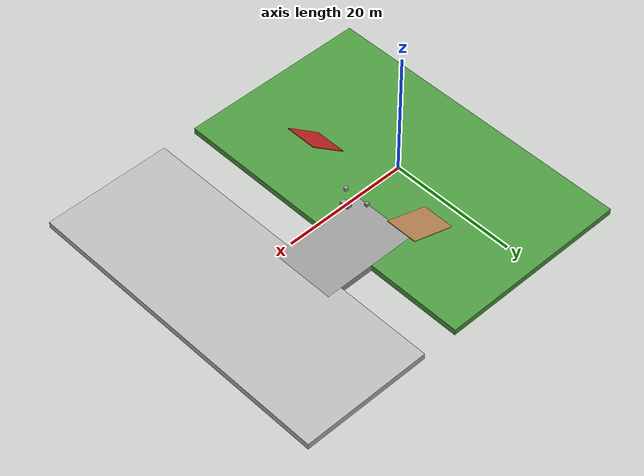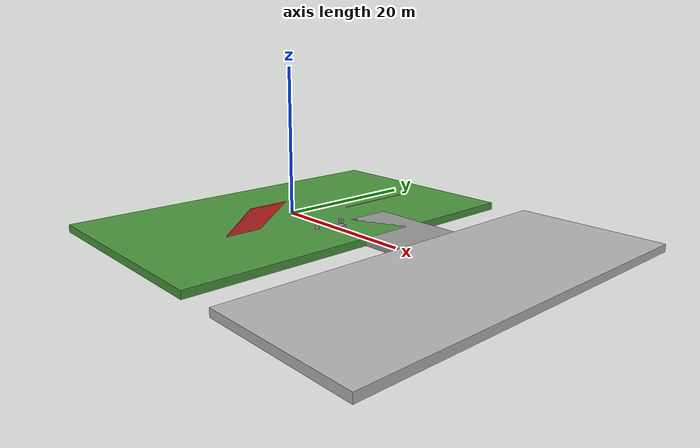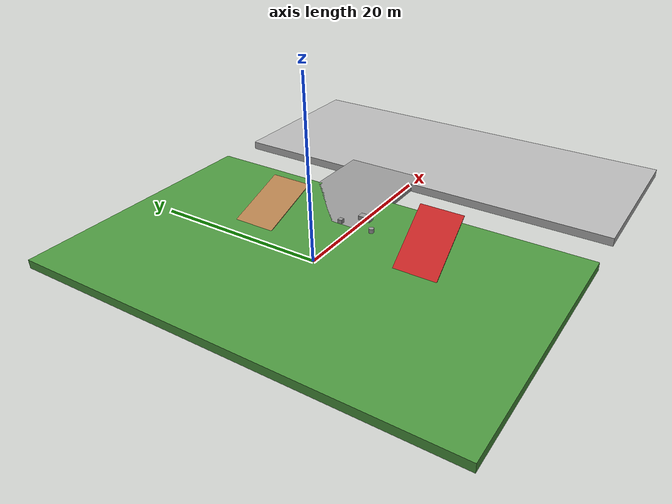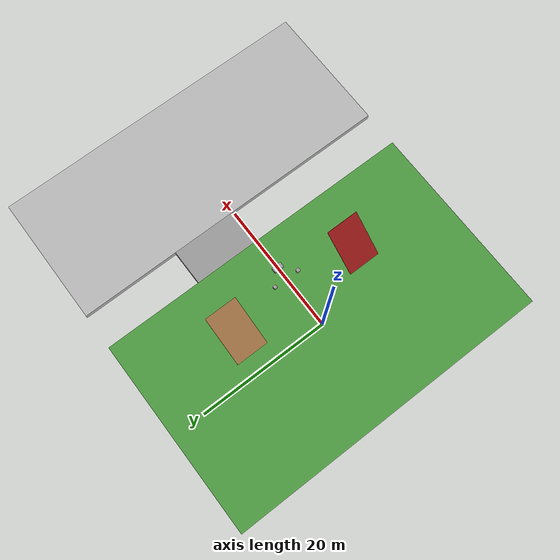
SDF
<?xml version="1.0" ?>
<sdf version="1.6">
  <world name="rough_terrain_test">

    <!-- SUN -->
    <include>
      <uri>model://sun</uri>
    </include>

    <!-- PHYSICS -->
    <physics type="ode">
      <real_time_update_rate>1000.0</real_time_update_rate>
      <max_step_size>0.001</max_step_size>
    </physics>

    <!-- 1. STARTING PLATFORM (The Base) -->
    <!-- Surface is at Z=0.0. We use a box shifted down so Z=0 is the top -->
    <model name="start_platform">
      <static>true</static>
      <pose>0 0 -0.5 0 0 0</pose> <!-- Center is -0.5, so top is 0.0 -->
      <link name="link">
        <collision name="col">
          <geometry><box><size>30 50 1.0</size></box></geometry>
        </collision>
        <visual name="vis">
          <geometry><box><size>30 50 1.0</size></box></geometry>
          <material>
            <script><uri>file://media/materials/scripts/gazebo.material</uri><name>Gazebo/Grass</name></script>
          </material>
        </visual>
      </link>
    </model>

    <!-- 2. THE TRENCH (Negative Obstacle Test) -->
    <!-- A gap of 0.5 meters (Client limit is 0.22m, so this is dangerous) -->
    <!-- Starts at x=15.0 (Edge of start platform) -->
    <model name="platform_after_trench">
      <static>true</static>
      <!-- Start platform ends at x=15. We add 0.5m gap. Next starts at 15.5 + 10 (half width) = 25.5 -->
      <pose>30.5 0 -0.5 0 0 0</pose>
      <link name="link">
        <collision name="col">
          <geometry><box><size>20 50 1.0</size></box></geometry>
        </collision>
        <visual name="vis">
          <geometry><box><size>20 50 1.0</size></box></geometry>
          <material>
            <script><uri>file://media/materials/scripts/gazebo.material</uri><name>Gazebo/Dirt</name></script>
          </material>
        </visual>
      </link>
    </model>

    <!-- 3. OBSTACLE FIELD (Hard Obstacles) -->
    <!-- Scattered rocks to test formation breaking -->
    <model name="rock_1">
      <static>true</static>
      <pose>8 2 0.25 0 0 0</pose>
      <link name="link">
        <collision name="col"><geometry><box><size>0.5 0.5 0.5</size></box></geometry></collision>
        <visual name="vis"><geometry><box><size>0.5 0.5 0.5</size></box></geometry><material><script><name>Gazebo/Grey</name></script></material></visual>
      </link>
    </model>

    <model name="rock_2">
      <static>true</static>
      <pose>8 -2 0.25 0 0 0</pose>
      <link name="link">
        <collision name="col"><geometry><cylinder><radius>0.3</radius><length>0.5</length></cylinder></geometry></collision>
        <visual name="vis"><geometry><cylinder><radius>0.3</radius><length>0.5</length></cylinder></geometry><material><script><name>Gazebo/Grey</name></script></material></visual>
      </link>
    </model>

    <model name="rock_3">
      <static>true</static>
      <pose>10 0 0.25 0 0 0</pose> <!-- Right in the leader's path -->
      <link name="link">
        <collision name="col"><geometry><box><size>0.8 1.5 0.5</size></box></geometry></collision>
        <visual name="vis"><geometry><box><size>0.8 1.5 0.5</size></box></geometry><material><script><name>Gazebo/Grey</name></script></material></visual>
      </link>
    </model>

    <!-- 4. THE RAMP (Slope Test) -->
    <!-- Client limit is 30 deg. We make a 25 deg (Safe) and 35 deg (Unsafe) ramp -->

    <!-- Safe Ramp (20 Degrees) -->
    <model name="ramp_safe">
      <static>true</static>
      <pose>5 10 0.85 0 -0.35 0</pose> <!-- -0.35 rad is approx 20 deg -->
      <link name="link">
        <collision name="col"><geometry><box><size>10 5 0.1</size></box></geometry></collision>
        <visual name="vis"><geometry><box><size>10 5 0.1</size></box></geometry>
        <material><script><name>Gazebo/Wood</name></script></material>
        </visual>
      </link>
    </model>

    <!-- Unsafe Ramp (40 Degrees) -->
    <model name="ramp_steep">
      <static>true</static>
      <pose>5 -10 1.5 0 -0.7 0</pose> <!-- -0.7 rad is approx 40 deg -->
      <link name="link">
        <collision name="col"><geometry><box><size>10 5 0.1</size></box></geometry></collision>
        <visual name="vis"><geometry><box><size>10 5 0.1</size></box></geometry>
        <material><script><name>Gazebo/Red</name></script></material>
        </visual>
      </link>
    </model>

    <!-- 5. THE BRIDGE (Safe Passage) -->
    <!-- Connects the two platforms over the trench -->
    <model name="connector_road">
      <static>true</static>
      <!-- Position: Center X=15.25 (Middle of gap), Y=5.0 (Offset side), Z=-0.5 -->
      <pose>15.25 5.0 -0.5 0 0 0</pose>
      <link name="link">
        <collision name="col">
          <!-- CHANGED: 5.0m long, 10.0m wide -->
          <geometry><box><size>15.0 10.0 1.0</size></box></geometry>
        </collision>
        <visual name="vis">
          <geometry><box><size>15.0 10.0 1.0</size></box></geometry>
          <material>
            <script><uri>file://media/materials/scripts/gazebo.material</uri><name>Gazebo/Grey</name></script>
          </material>
        </visual>
      </link>
    </model>

  </world>
</sdf>
